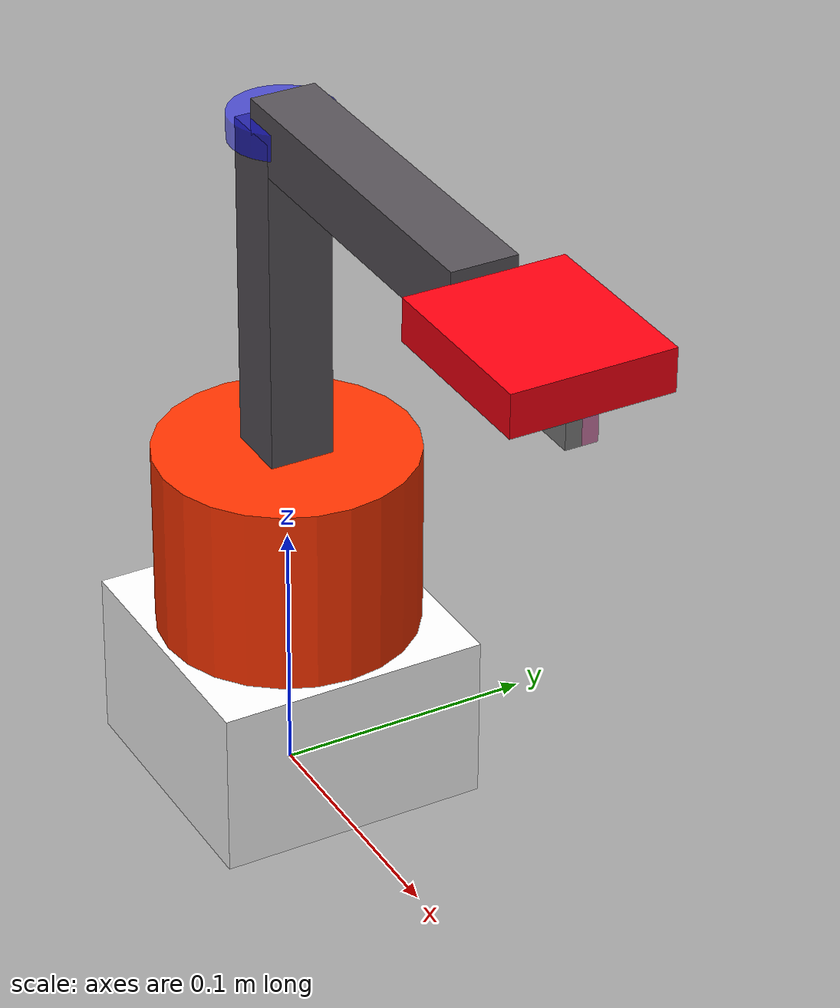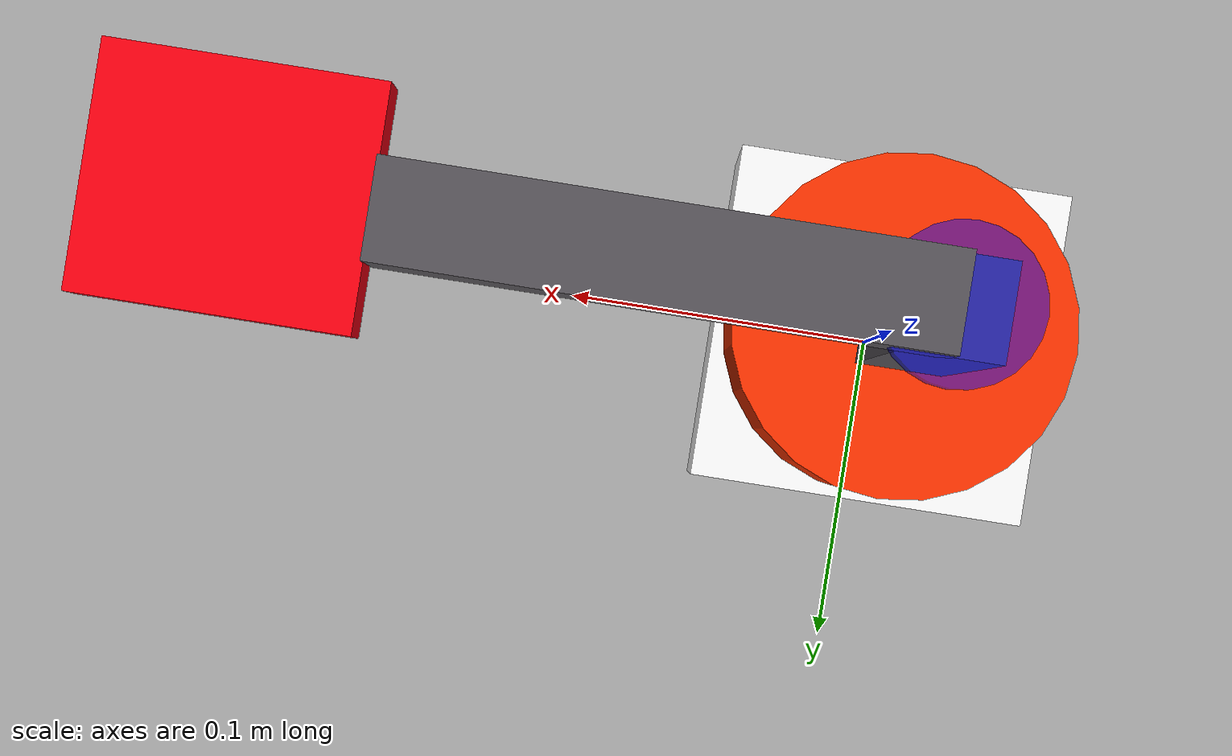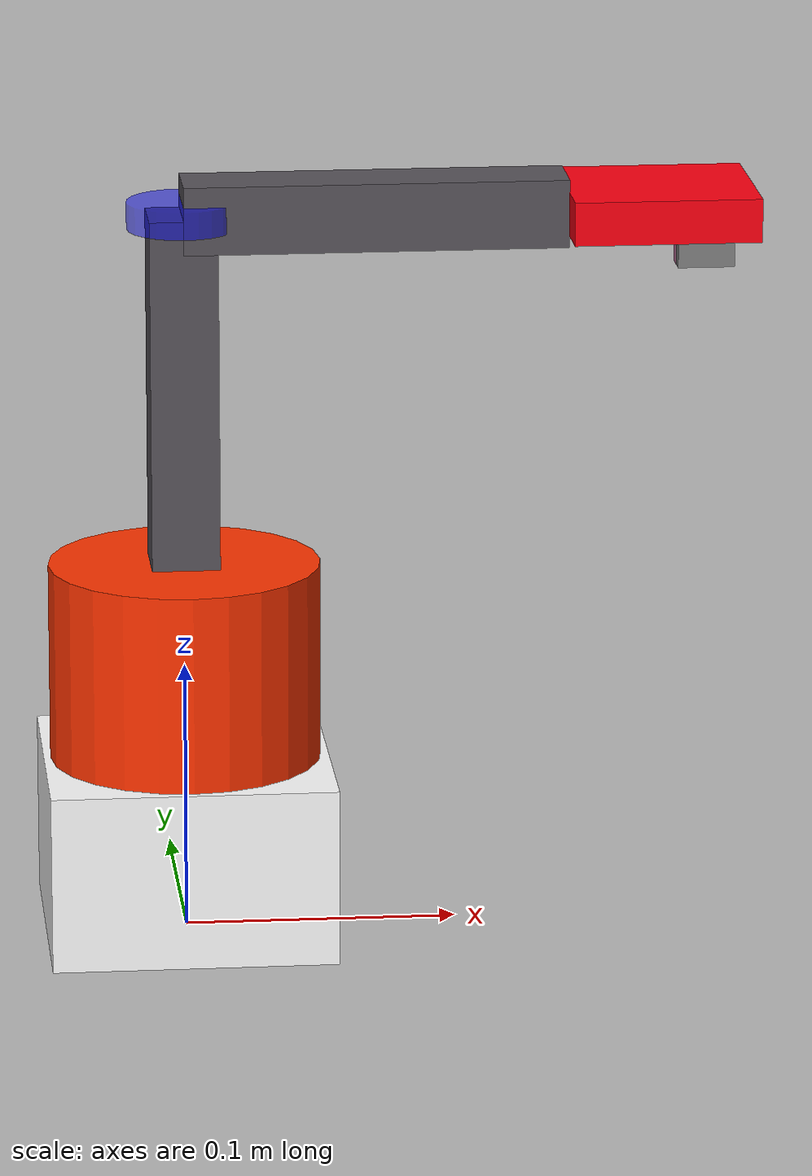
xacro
<?xml version="1.0"?>
<robot xmlns:xacro="http://www.ros.org/wiki/xacro" name="robot">
    <xacro:arg name="initial_positions_file" default="initial_positions.yaml" />

    <!-- Import robot urdf file -->
    <xacro:include filename="$(find three_dof_robot_description)/urdf/threeDOFrobot.urdf" />

    <!-- Import control_xacro -->
    <xacro:include filename="robot.ros2_control.xacro" />

    <!-- Ensure initial_positions.yaml exists in this package's config folder -->
    <!-- Use a more descriptive name for the hardware -->
    <xacro:robot_ros2_control name="UnoStepperHardware" initial_positions_file="$(arg initial_positions_file)"/>

</robot>

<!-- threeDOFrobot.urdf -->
<robot name="robot">

    <link name="base_link">
        <visual>
            <origin xyz="0 0 .033" rpy="0 0 0" />
            <geometry>
                <box size="0.105 0.105 0.066" />
            </geometry>
            <material name="base_link-material">
                <color rgba="1 1 1 1" />
            </material>
        </visual>
        <collision>
            <origin xyz="0 0 .033" rpy="0 0 0" />
            <geometry>
                <box size="0.105 0.105 0.066" />
            </geometry>
        </collision>
        <inertial>
            <origin xyz="0 0 0" rpy="0 0 0" />
            <mass value="0" />
            <inertia ixx="0" ixy="0" ixz="0" iyy="0" iyz="0" izz="0" />
        </inertial>
    </link>

    <joint name="base_link_to_upper_base_link" type="revolute">
        <parent link="base_link" />
        <child link="upper_base_link" />
        <origin xyz="0.000 0 0.10275" rpy="0 0 0" />
        <axis xyz="0 0 -1"/>
        <limit effort="100.0" lower="-3.14159" upper="1.5708" velocity="0.5"/>
    </joint>

    <link name="upper_base_link">
        <visual>
            <origin xyz="0 0 0" rpy="0 0 0" />
            <geometry>
                <cylinder radius="0.05" length="0.0735" />
            </geometry>
            <material name="upper_base_link-material">
                <color rgba="1.0 0.202 0.0 1.0" />
            </material>
        </visual>
        <collision>
            <origin xyz="0 0 0" rpy="0 0 0" />
            <geometry>
                <cylinder radius="0.05" length="0.0735" />
            </geometry>
        </collision>
        <inertial>
            <origin xyz="0 0 0" rpy="0 0 0" />
            <mass value="0.1" />
            <inertia ixx="0.00333333" ixy="0" ixz="0" iyy="0.005" iyz="0" izz="0.00333333" />
        </inertial>
    </link>

    <joint name="upper_base_link_to_lower_link" type="revolute">
        <parent link="upper_base_link" />
        <child link="lower_link" />
        <origin xyz="0 0 0.02725" rpy="0 0 0" />
        <axis xyz="0 -1 0"/>
        <limit lower="-1.74533" upper="0.95993" effort="30" velocity="1.1"/>
    </joint>

    <link name="lower_link">
        <visual>
            <origin xyz="0 0 0.0700" rpy="0 0 0" />
            <geometry>
                <box size="0.025 0.025 0.14" />
            </geometry>
            <material name="lower_link-material">
                <color rgba="0.344 0.328 0.351 1.0" />
            </material>
        </visual>
        <collision>
            <origin xyz="0 0 0.0700" rpy="0 0 0" />
            <geometry>
                <box size="0.025 0.025 0.14" />
            </geometry>
        </collision>
        <inertial>
            <origin xyz="0 0 0.0700" rpy="0 0 0" />
            <mass value="0.1" />
            <inertia ixx="0.00166667" ixy="0" ixz="0" iyy="0.00166667" iyz="0" izz="0.00166667" />
        </inertial>
    </link>

    <link name="virtual_upper_arm_link">
        <visual>
            <geometry>
                <cylinder length="0.01" radius="0.02"/>
            </geometry>
            <material name="virtual_link_material">
                <color rgba="0 0 1 0.5"/>
            </material>
            <origin rpy="0 0 0" xyz="0 0 0"/>
        </visual>
        <collision>
            <geometry>
                <cylinder length="0.01" radius="0.02"/>
            </geometry>
            <origin rpy="0 0 0" xyz="0 0 0"/>
        </collision>
        <inertial>
            <mass value="0.00001"/>
            <inertia ixx="0.00000001" ixy="0.0" ixz="0.0" iyy="0.00000001" iyz="0.0" izz="0.00000001"/>
        </inertial>
    </link>

    <joint name="virtual_upper_arm_joint" type="revolute">
        <parent link="lower_link"/>
        <child link="virtual_upper_arm_link"/>
        <origin xyz="0 0 0.14" rpy="0 0 1.5708"/>
        <axis xyz="1 0 0"/>
        <limit lower="-2.35619" upper="2.35619" effort="20" velocity="1.1"/>
        <mimic joint="upper_base_link_to_lower_link" multiplier="1" offset="0.0"/>
    </joint>

    <joint name="lower_link_to_upper_link" type="revolute">
        <parent link="virtual_upper_arm_link" />
        <child link="upper_link" />
        <origin xyz="0 0 0" rpy="-1.5708 0 3.14159" />
        <axis xyz="1 0 0"/>
        <limit lower="-2.35619" upper="2.35619" effort="20" velocity="1.1"/>
    </joint>

    <link name="upper_link">
        <visual>
            <origin xyz="0 0 0.07" rpy="0 0 0" />
            <geometry>
                <box size="0.025 0.025 0.14" />
            </geometry>
            <material name="upper_link-material">
                <color rgba="0.344 0.328 0.351 1.0" />
            </material>
        </visual>
        <collision>
            <origin xyz="0 0 0.07" rpy="0 0 0" />
            <geometry>
                <box size="0.025 0.025 0.14" />
            </geometry>
        </collision>
        <inertial>
            <origin xyz="0 0 0.07" rpy="0 0 0" />
            <mass value="0.1" />
            <inertia ixx="0.00166667" ixy="0" ixz="0" iyy="0.00166667" iyz="0" izz="0.00166667" />
        </inertial>
    </link>

    <joint name="upper_link_to_end_effector" type="revolute">
        <parent link="upper_link" />
        <child link="end_effector" />
        <origin xyz="0 0 0.1398" rpy="0 0 0" />
        <axis xyz="1 0 0"/>
        <limit lower="-2.35619" upper="2.35619" effort="20" velocity="1.1"/>
        <mimic joint="lower_link_to_upper_link" multiplier="-1" offset="0.0"/>
    </joint>

    <link name="end_effector">
        <visual>
            <origin xyz="0 0 0.03405" rpy="0 0 0" />
            <geometry>
                <box size="0.06 0.016 0.06810" />
            </geometry>
            <material name="end_effector-material">
                <color rgba="1 0 0.065 1" />
            </material>
        </visual>
        <collision>
            <origin xyz="0 0 0.03405" rpy="0 0 0" />
            <geometry>
                <box size="0.06 0.016 0.06810" />
            </geometry>
        </collision>
        <inertial>
            <origin xyz="0 0 0.0155" rpy="0 0 0" />
            <mass value="0.1" />
            <inertia ixx="0.00166667" ixy="0" ixz="0" iyy="0.00166667" iyz="0" izz="0.00166667" />
        </inertial>
    </link>

    <material name="finger_material">
        <color rgba="0.5 0.5 0.5 1.0"/> <!-- Grey color for fingers -->
    </material>

    <link name="left_finger">
        <visual>
            <origin xyz="-0.003 0.015 0.051224" rpy="0 0 0"/>
            <geometry>
                <box size="0.006 0.015 0.02085"/>
            </geometry>
            <color rgba="1 0 0.065 .5" />
        </visual>
        <collision>
            <origin xyz="-0.003 0.015 0.051224" rpy="0 0 0"/>
            <geometry>
                <box size="0.006 0.015 0.02085"/>
            </geometry>
        </collision>
        <inertial>
            <origin xyz="0 0 0" rpy="0 0 0"/>
            <mass value="0.01"/>
            <inertia ixx="1.35e-6" ixy="0" ixz="0" iyy="1.42e-6" iyz="0" izz="1.0e-7"/>
        </inertial>
    </link>

    <link name="right_finger">
        <visual>
            <origin xyz="0.003 0.015 0.051224" rpy="0 0 0"/>
            <geometry>
                <box size="0.006 0.015 0.02085"/>
            </geometry>
            <material name="finger_material"/>
        </visual>
        <collision>
            <origin xyz="0.003 0.015 0.051224" rpy="0 0 0"/>
            <geometry>
                <box size="0.006 0.015 0.02085"/>
            </geometry>
        </collision>
        <inertial>
            <origin xyz="0 0 0" rpy="0 0 0"/>
            <mass value="0.01"/>
            <inertia ixx="1.35e-6" ixy="0" ixz="0" iyy="1.42e-6" iyz="0" izz="1.0e-7"/>
        </inertial>
    </link>

    <joint name="left_finger_joint" type="prismatic">
        <parent link="end_effector"/>
        <child link="left_finger"/>
        <origin xyz="0 0 0" rpy="0 0 0"/>
        <axis xyz="-1 0 0"/>
        <limit lower="0.0" upper="0.017" effort="10" velocity="0.05"/>
    </joint>

    <joint name="right_finger_joint" type="prismatic">
        <parent link="end_effector"/>
        <child link="right_finger"/>
        <origin xyz="0 0 0" rpy="0 0 0"/>
        <axis xyz="1 0 0"/>
        <limit lower="0.0" upper="0.017" effort="10" velocity="0.05"/>
        <mimic joint="left_finger_joint" multiplier="1" offset="0.0"/>
    </joint>

    <link name="tcp">
    <visual>
        <origin xyz="0 0 0" rpy="0 0 0"/>
        <geometry>
        <sphere radius="0.005"/> </geometry>
        <material name="red">
        <color rgba="1 0 0 1"/> </material>
    </visual>
    </link>

    <joint name="end_effector_to_tcp" type="fixed">
        <parent link="end_effector"/>  <child link="tcp"/>
        <origin xyz="0 0.015 0.04795" rpy="0 0 0"/>
    </joint>

    <material name="red">
    <color rgba="0 1 0 1"/>
    </material>

</robot>
